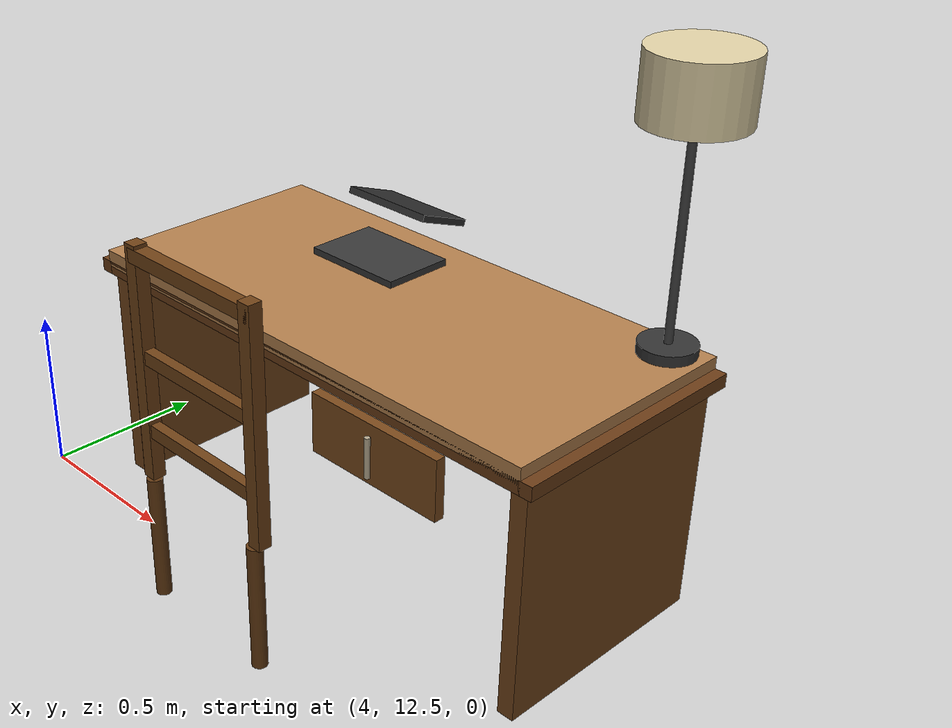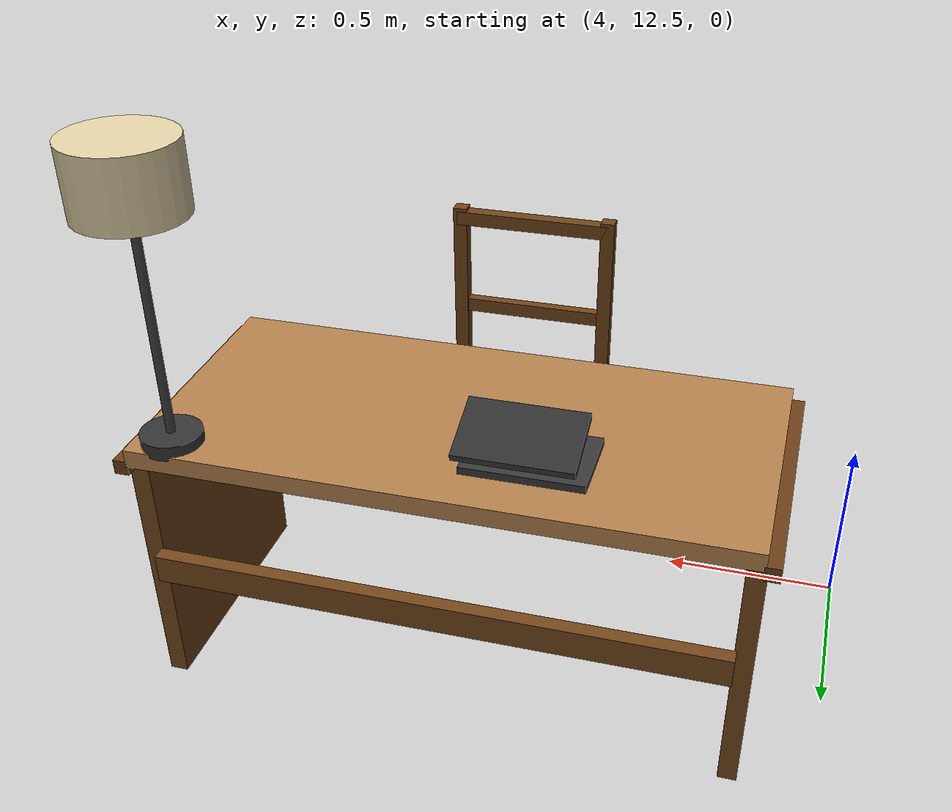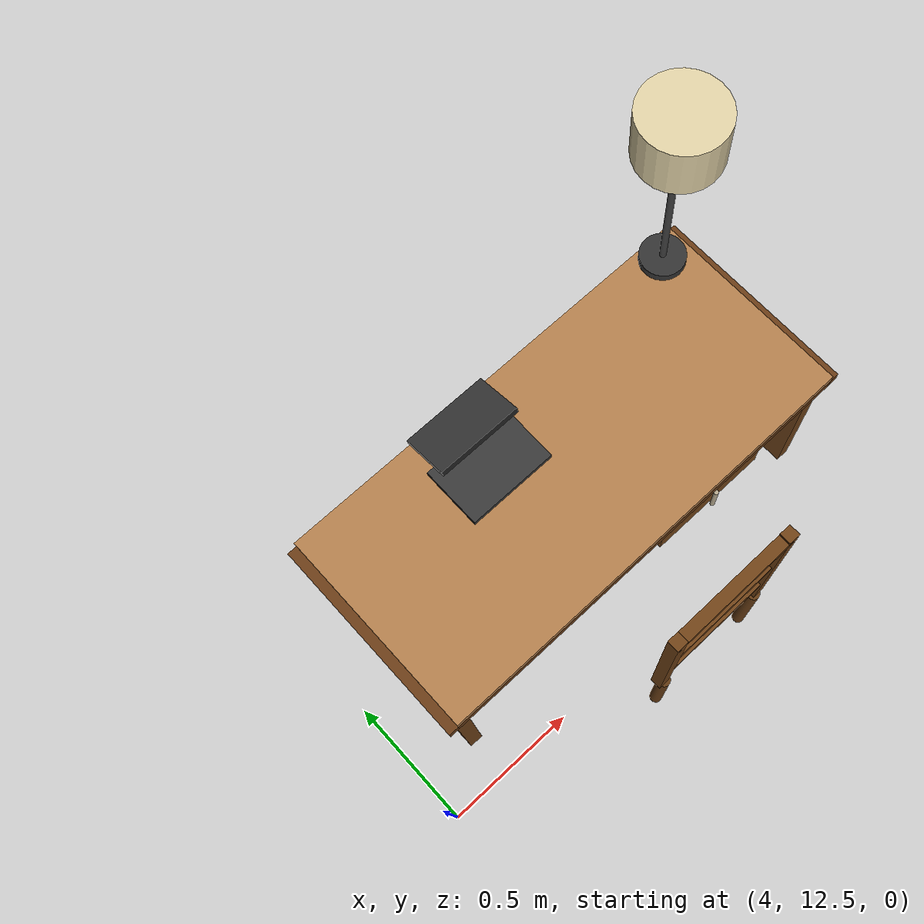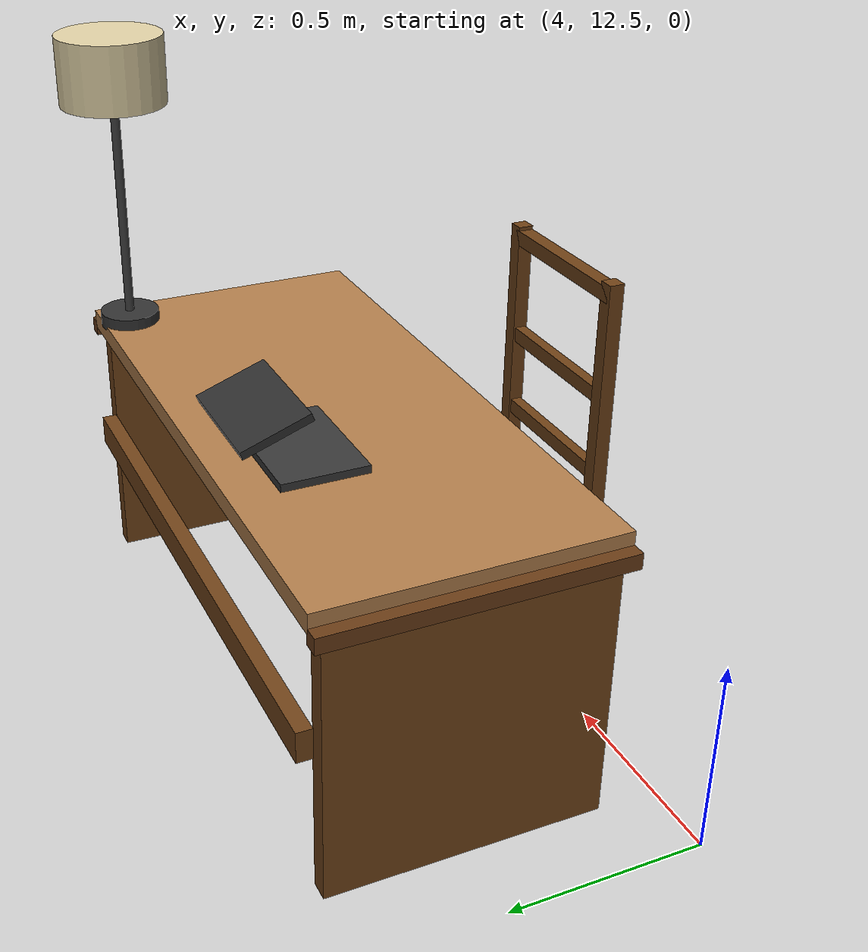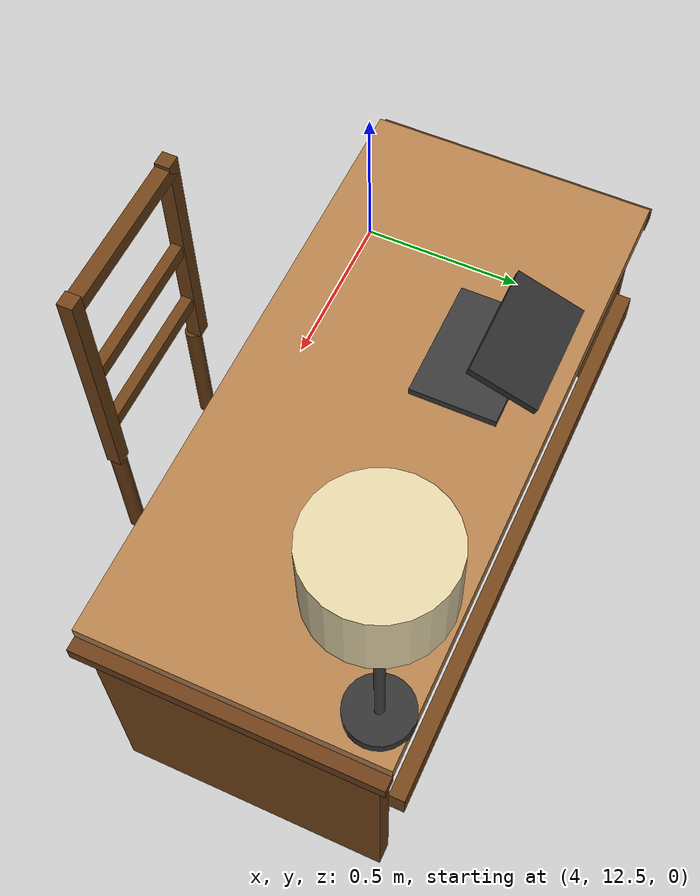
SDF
<sdf version="1.6">
 <world name="study_room">
  <model name="desk_top">
   <static>true</static>
   <pose>5.0 13.0 0.735 0 0 0</pose>
   <link name="link">
    <collision name="col"><geometry><box><size>1.60 0.75 0.05</size></box></geometry></collision>
    <visual name="vis">
     <geometry><box><size>1.60 0.75 0.05</size></box></geometry>
     <material>
      <script><uri>file://media/materials/scripts/gazebo.material</uri><name>Gazebo/Wood</name></script>
      <ambient>0.50 0.30 0.12 1</ambient>
      <diffuse>0.50 0.30 0.12 1</diffuse>
      <specular>0.50 0.35 0.15 60</specular>
     </material>
    </visual>
   </link>
  </model>
  <model name="desk_edge_front">
   <static>true</static>
   <pose>5.0 12.645 0.705 0 0 0</pose>
   <link name="link">
    <visual name="vis">
     <geometry><box><size>1.60 0.04 0.04</size></box></geometry>
     <material>
      <ambient>0.42 0.24 0.09 1</ambient>
      <diffuse>0.42 0.24 0.09 1</diffuse>
      <specular>0.4 0.28 0.10 80</specular>
     </material>
    </visual>
   </link>
  </model>
  <model name="desk_edge_l">
   <static>true</static>
   <pose>4.185 13.0 0.705 0 0 0</pose>
   <link name="link">
    <visual name="vis">
     <geometry><box><size>0.04 0.75 0.04</size></box></geometry>
     <material>
      <ambient>0.42 0.24 0.09 1</ambient>
      <diffuse>0.42 0.24 0.09 1</diffuse>
      <specular>0.4 0.28 0.10 80</specular>
     </material>
    </visual>
   </link>
  </model>
  <model name="desk_edge_r">
   <static>true</static>
   <pose>5.815 13.0 0.705 0 0 0</pose>
   <link name="link">
    <visual name="vis">
     <geometry><box><size>0.04 0.75 0.04</size></box></geometry>
     <material>
      <ambient>0.42 0.24 0.09 1</ambient>
      <diffuse>0.42 0.24 0.09 1</diffuse>
      <specular>0.4 0.28 0.10 80</specular>
     </material>
    </visual>
   </link>
  </model>
  <model name="desk_side_l">
   <static>true</static>
   <pose>4.22 13.0 0.355 0 0 0</pose>
   <link name="link">
    <collision name="col"><geometry><box><size>0.05 0.70 0.71</size></box></geometry></collision>
    <visual name="vis">
     <geometry><box><size>0.05 0.70 0.71</size></box></geometry>
     <material>
      <ambient>0.45 0.27 0.10 1</ambient>
      <diffuse>0.45 0.27 0.10 1</diffuse>
      <specular>0.35 0.22 0.08 50</specular>
     </material>
    </visual>
   </link>
  </model>
  <model name="desk_side_r">
   <static>true</static>
   <pose>5.78 13.0 0.355 0 0 0</pose>
   <link name="link">
    <collision name="col"><geometry><box><size>0.05 0.70 0.71</size></box></geometry></collision>
    <visual name="vis">
     <geometry><box><size>0.05 0.70 0.71</size></box></geometry>
     <material>
      <ambient>0.45 0.27 0.10 1</ambient>
      <diffuse>0.45 0.27 0.10 1</diffuse>
      <specular>0.35 0.22 0.08 50</specular>
     </material>
    </visual>
   </link>
  </model>
  <model name="desk_rail">
   <static>true</static>
   <pose>5.0 13.37 0.40 0 0 0</pose>
   <link name="link">
    <visual name="vis">
     <geometry><box><size>1.52 0.04 0.08</size></box></geometry>
     <material><ambient>0.45 0.27 0.10 1</ambient><diffuse>0.45 0.27 0.10 1</diffuse></material>
    </visual>
   </link>
  </model>
  <model name="desk_drawer">
   <static>true</static>
   <pose>5.3 12.66 0.55 0 0 0</pose>
   <link name="link">
    <visual name="vis">
     <geometry><box><size>0.45 0.03 0.18</size></box></geometry>
     <material>
      <ambient>0.48 0.29 0.11 1</ambient>
      <diffuse>0.48 0.29 0.11 1</diffuse>
      <specular>0.5 0.38 0.15 100</specular>
     </material>
    </visual>
   </link>
  </model>
  <model name="desk_drawer_handle">
   <static>true</static>
   <pose>5.3 12.63 0.55 0 0 0</pose>
   <link name="link">
    <visual name="vis">
     <geometry><cylinder><radius>0.008</radius><length>0.12</length></cylinder></geometry>
     <material>
      <ambient>0.70 0.65 0.55 1</ambient>
      <diffuse>0.70 0.65 0.55 1</diffuse>
      <specular>0.9 0.85 0.65 120</specular>
     </material>
    </visual>
   </link>
  </model>
  <model name="chair_back_post_l">
   <static>true</static>
   <pose>4.78 12.34 0.72 0 0 0</pose>
   <link name="link">
    <collision name="col"><geometry><box><size>0.04 0.04 0.68</size></box></geometry></collision>
    <visual name="vis">
     <geometry><box><size>0.04 0.04 0.68</size></box></geometry>
     <material>
      <ambient>0.44 0.26 0.09 1</ambient>
      <diffuse>0.44 0.26 0.09 1</diffuse>
      <specular>0.35 0.22 0.08 50</specular>
     </material>
    </visual>
   </link>
  </model>
  <model name="chair_back_post_r">
   <static>true</static>
   <pose>5.22 12.34 0.72 0 0 0</pose>
   <link name="link">
    <collision name="col"><geometry><box><size>0.04 0.04 0.68</size></box></geometry></collision>
    <visual name="vis">
     <geometry><box><size>0.04 0.04 0.68</size></box></geometry>
     <material>
      <ambient>0.44 0.26 0.09 1</ambient>
      <diffuse>0.44 0.26 0.09 1</diffuse>
      <specular>0.35 0.22 0.08 50</specular>
     </material>
    </visual>
   </link>
  </model>
  <model name="chair_back_bar_top">
   <static>true</static>
   <pose>5.0 12.34 1.03 0 0 0</pose>
   <link name="link">
    <visual name="vis">
     <geometry><box><size>0.46 0.04 0.04</size></box></geometry>
     <material>
      <ambient>0.44 0.26 0.09 1</ambient>
      <diffuse>0.44 0.26 0.09 1</diffuse>
      <specular>0.35 0.22 0.08 50</specular>
     </material>
    </visual>
   </link>
  </model>
  <model name="chair_back_bar_mid">
   <static>true</static>
   <pose>5.0 12.34 0.75 0 0 0</pose>
   <link name="link">
    <visual name="vis">
     <geometry><box><size>0.46 0.03 0.04</size></box></geometry>
     <material><ambient>0.44 0.26 0.09 1</ambient><diffuse>0.44 0.26 0.09 1</diffuse></material>
    </visual>
   </link>
  </model>
  <model name="chair_back_bar_bot">
   <static>true</static>
   <pose>5.0 12.34 0.53 0 0 0</pose>
   <link name="link">
    <visual name="vis">
     <geometry><box><size>0.46 0.03 0.04</size></box></geometry>
     <material><ambient>0.44 0.26 0.09 1</ambient><diffuse>0.44 0.26 0.09 1</diffuse></material>
    </visual>
   </link>
  </model>
  <model name="chair_leg_bl">
   <static>true</static>
   <pose>4.79 12.33 0.19 0 0 0</pose>
   <link name="link">
    <collision name="col">
     <geometry><cylinder><radius>0.022</radius><length>0.38</length></cylinder></geometry>
    </collision>
    <visual name="vis">
     <geometry><cylinder><radius>0.022</radius><length>0.38</length></cylinder></geometry>
     <material><ambient>0.38 0.22 0.07 1</ambient><diffuse>0.38 0.22 0.07 1</diffuse></material>
    </visual>
   </link>
  </model>
  <model name="chair_leg_br">
   <static>true</static>
   <pose>5.21 12.33 0.19 0 0 0</pose>
   <link name="link">
    <collision name="col">
     <geometry><cylinder><radius>0.022</radius><length>0.38</length></cylinder></geometry>
    </collision>
    <visual name="vis">
     <geometry><cylinder><radius>0.022</radius><length>0.38</length></cylinder></geometry>
     <material><ambient>0.38 0.22 0.07 1</ambient><diffuse>0.38 0.22 0.07 1</diffuse></material>
    </visual>
   </link>
  </model>
  <model name="desk_lamp_base">
   <static>true</static>
   <pose>5.7 13.30 0.77 0 0 0</pose>
   <link name="link">
    <collision name="col">
     <geometry><cylinder><radius>0.08</radius><length>0.04</length></cylinder></geometry>
    </collision>
    <visual name="vis">
     <geometry><cylinder><radius>0.08</radius><length>0.04</length></cylinder></geometry>
     <material>
      <ambient>0.20 0.20 0.20 1</ambient>
      <diffuse>0.20 0.20 0.20 1</diffuse>
      <specular>0.7 0.7 0.7 80</specular>
     </material>
    </visual>
   </link>
  </model>
  <model name="desk_lamp_arm">
   <static>true</static>
   <pose>5.7 13.30 1.08 0 0 0</pose>
   <link name="link">
    <collision name="col">
     <geometry><cylinder><radius>0.012</radius><length>0.62</length></cylinder></geometry>
    </collision>
    <visual name="vis">
     <geometry><cylinder><radius>0.012</radius><length>0.62</length></cylinder></geometry>
     <material>
      <ambient>0.25 0.25 0.25 1</ambient>
      <diffuse>0.25 0.25 0.25 1</diffuse>
      <specular>0.8 0.8 0.8 100</specular>
     </material>
    </visual>
   </link>
  </model>
  <model name="desk_lamp_shade">
   <static>true</static>
   <pose>5.7 13.30 1.46 0 0 0</pose>
   <link name="link">
    <visual name="vis">
     <geometry><cylinder><radius>0.14</radius><length>0.18</length></cylinder></geometry>
     <material><ambient>0.88 0.82 0.65 1</ambient><diffuse>0.88 0.82 0.65 1</diffuse></material>
    </visual>
   </link>
  </model>
  <model name="laptop_base">
   <static>true</static>
   <pose>4.8 13.15 0.775 0 0 0</pose>
   <link name="link">
    <collision name="col"><geometry><box><size>0.32 0.22 0.02</size></box></geometry></collision>
    <visual name="vis">
     <geometry><box><size>0.32 0.22 0.02</size></box></geometry>
     <material>
      <ambient>0.22 0.22 0.22 1</ambient>
      <diffuse>0.22 0.22 0.22 1</diffuse>
      <specular>0.6 0.6 0.6 60</specular>
     </material>
    </visual>
   </link>
  </model>
  <model name="laptop_screen">
   <static>true</static>
   <pose>4.8 13.26 0.90 -0.35 0 0</pose>
   <link name="link">
    <visual name="vis">
     <geometry><box><size>0.30 0.18 0.02</size></box></geometry>
     <material>
      <ambient>0.18 0.18 0.18 1</ambient>
      <diffuse>0.18 0.18 0.18 1</diffuse>
      <specular>0.6 0.6 0.6 60</specular>
     </material>
    </visual>
   </link>
  </model>
  <model name="laptop_screen_glow">
   <static>true</static>
   <pose>4.8 13.265 0.905 -0.35 0 0</pose>
   <link name="link">
    <visual name="vis">
     <geometry><box><size>0.28 0.16 0.003</size></box></geometry>
     <material>
      <ambient>0.50 0.65 0.80 1</ambient>
      <diffuse>0.50 0.65 0.80 1</diffuse>
      <emissive>0.20 0.30 0.45 1</emissive>
     </material>
    </visual>
   </link>
  </model>
 </world>
</sdf>
